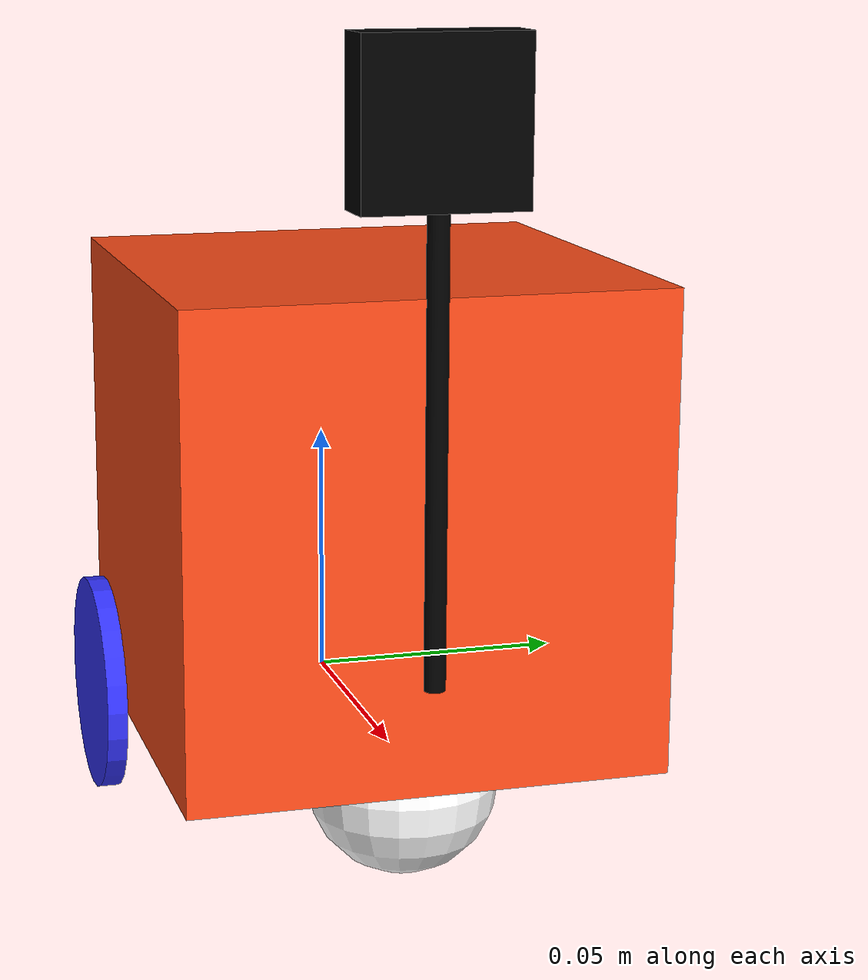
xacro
<?xml version="1.0"?>
<robot xmlns:xacro="http://www.ros.org/wiki/xacro"  name="robot">

    <xacro:arg name="sim_mode" default="false"/>
    <xacro:include filename="robot_core.xacro" />
    <xacro:include filename="camera.xacro" />
    <xacro:include filename="gazebo_control.xacro" />

</robot>

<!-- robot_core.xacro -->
<robot xmlns:xacro="http://www.ros.org/wiki/xacro" >

    <xacro:include filename="inertial_macros.xacro"/>

    <xacro:property name="chassis_length" value="0.09"/>
    <xacro:property name="chassis_width" value="0.09"/>
    <xacro:property name="chassis_height" value="0.09"/>
    <xacro:property name="chassis_mass" value="0.5"/>
    <xacro:property name="wheel_radius" value="0.0215"/>
    <xacro:property name="wheel_thickness" value="0.004"/>
    <xacro:property name="wheel_mass" value="0.05"/>
    <xacro:property name="wheel_offset_x" value="0.01024"/>
    <xacro:property name="wheel_offset_y" value="0.047"/>
    <xacro:property name="wheel_offset_z" value="0.0"/>
    <xacro:property name="caster_wheel_radius" value="0.018"/>
    <xacro:property name="caster_wheel_mass" value="0.001"/>
    <xacro:property name="caster_wheel_offset_x" value="0.07"/>
    <xacro:property name="caster_wheel_offset_z" value="${wheel_offset_z - wheel_radius + caster_wheel_radius}"/>

    <material name="white">
        <color rgba="1 1 1 1" />
    </material>

    <material name="orange">
        <color rgba="1 0.3 0.1 1"/>
    </material>

    <material name="blue">
        <color rgba="0.2 0.2 1 1"/>
    </material>

    <material name="black">
        <color rgba="0 0 0 1"/>
    </material>

    <material name="red">
        <color rgba="1 0 0 1"/>
    </material>

    <!-- BASE LINK -->

    <link name="base_link">

    </link>

    <!-- BASE_FOOTPRINT LINK -->

    <joint name="base_footprint_joint" type="fixed">
        <parent link="base_link"/>
        <child link="base_footprint"/>
        <origin xyz="0 0 0" rpy="0 0 0"/>
    </joint>

    <link name="base_footprint">
    </link>

    <!-- CHASSIS LINK -->

    <joint name="chassis_joint" type="fixed">
        <parent link="base_link"/>
        <child link="chassis"/>
        <origin xyz="${-wheel_offset_x} 0 ${-wheel_offset_z}"/>
    </joint>

    <link name="chassis">
        <visual>
            <origin xyz="${chassis_length/2} 0 ${chassis_height/2}"/>
            <geometry>
                <box size="${chassis_length} ${chassis_width} ${chassis_height}"/>
            </geometry>
            <material name="orange"/>
        </visual>
        <collision>
            <origin xyz="${chassis_length/2} 0 ${chassis_height/2}"/>
            <geometry>
                <box size="${chassis_length} ${chassis_width} ${chassis_height}"/>
            </geometry>
        </collision>
        <xacro:inertial_box mass="0.5" x="${chassis_length}" y="${chassis_width}" z="${chassis_height}">
            <origin xyz="${chassis_length/2} 0 ${chassis_height/2}" rpy="0 0 0"/>
        </xacro:inertial_box>
    </link>

    <gazebo reference="chassis">
        <material>Gazebo/Orange</material>
    </gazebo>

    <!-- LEFT WHEEL LINK -->

    <joint name="left_wheel_joint" type="continuous">
        <parent link="base_link"/>
        <child link="left_wheel"/>
        <origin xyz="0 ${wheel_offset_y} 0" rpy="-${pi/2} 0 0" />
        <axis xyz="0 0 1"/>
    </joint>

    <link name="left_wheel">
        <visual>
            <geometry>
                <cylinder radius="${wheel_radius}" length="${wheel_thickness}"/>
            </geometry>
            <material name="blue"/>
        </visual>
        <collision>
            <geometry>
                <sphere radius="${wheel_radius}"/>
            </geometry>
        </collision>
        <xacro:inertial_cylinder mass="${wheel_mass}" length="${wheel_thickness}" radius="${wheel_radius}">
            <origin xyz="0 0 0" rpy="0 0 0"/>
        </xacro:inertial_cylinder>
    </link>

    <gazebo reference="left_wheel">
        <material>Gazebo/Blue</material>
    </gazebo>

    <!-- RIGHT WHEEL LINK -->

    <joint name="right_wheel_joint" type="continuous">
        <parent link="base_link"/>
        <child link="right_wheel"/>
        <origin xyz="0 ${-wheel_offset_y} 0" rpy="${pi/2} 0 0" />
        <axis xyz="0 0 -1"/>
    </joint>

    <link name="right_wheel">
        <visual>
            <geometry>
                <cylinder radius="${wheel_radius}" length="${wheel_thickness}"/>
            </geometry>
            <material name="blue"/>
        </visual>
        <collision>
            <geometry>
                <sphere radius="${wheel_radius}"/>
            </geometry>
        </collision>
        <xacro:inertial_cylinder mass="${wheel_mass}" length="${wheel_thickness}" radius="${wheel_radius}">
            <origin xyz="0 0 0" rpy="0 0 0"/>
        </xacro:inertial_cylinder>
    </link>

    <gazebo reference="right_wheel">
        <material>Gazebo/Blue</material>
    </gazebo>

    <!-- CASTER WHEEL LINK -->

    <joint name="caster_wheel_joint" type="fixed">
        <parent link="chassis"/>
        <child link="caster_wheel"/>
        <origin xyz="${caster_wheel_offset_x} 0 ${caster_wheel_offset_z}"/>
    </joint>

    <link name="caster_wheel">
        <visual>
            <geometry>
                <sphere radius="${caster_wheel_radius}"/>
            </geometry>
            <material name="white"/>
        </visual>
        <collision>
            <geometry>
                <sphere radius="${caster_wheel_radius}"/>
            </geometry>
        </collision>
        <xacro:inertial_sphere mass="${caster_wheel_mass}" radius="${caster_wheel_radius}">
            <origin xyz="0 0 0" rpy="0 0 0"/>
        </xacro:inertial_sphere>
    </link>

    <gazebo reference="caster_wheel">
        <material>Gazebo/White</material>
        <mu1 value="0.001"/>
        <mu2 value="0.001"/>
    </gazebo>

</robot>

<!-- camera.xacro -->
<robot xmlns:xacro="http://www.ros.org/wiki/xacro" >

    <joint name="camera_joint" type="fixed">
        <parent link="chassis"/>
        <child link="camera_link"/>
        <origin xyz="0.09 0 0.12" rpy="0 0 0"/>

    </joint>

    <link name="camera_link">
        <visual>
            <geometry>
                <box size="0.010 0.03 0.03"/>
            </geometry>
            <material name="black"/>
        </visual>
        <visual>
            <origin xyz="0 0 -0.05"/>
            <geometry>
                <cylinder radius="0.002" length="0.1"/>
            </geometry>
            <material name="black"/>
        </visual>
    </link>

    <joint name="camera_optical_joint" type="fixed">
        <parent link="camera_link"/>
        <child link="camera_link_optical"/>
        <origin xyz="0 0 0" rpy="${-pi/2} 0 ${-pi/2}"/>
    </joint>

    <link name="camera_link_optical"></link>

    <gazebo reference="camera_link">
        <material>Gazebo/Black</material>

        <sensor name="camera" type="camera">
            <pose> 0 0 0 0 0 0 </pose>
            <visualize>true</visualize>
            <update_rate>10</update_rate>
            <camera>
                <horizontal_fov>1.089</horizontal_fov>
                <image>
                    <format>R8G8B8</format>
                    <width>640</width>
                    <height>480</height>
                </image>
                <clip>
                    <near>0.05</near>
                    <far>8.0</far>
                </clip>
            </camera>
            <plugin name="camera_controller" filename="libgazebo_ros_camera.so">
                <frame_name>camera_link_optical</frame_name>
            </plugin>
        </sensor>
    </gazebo>

</robot>
